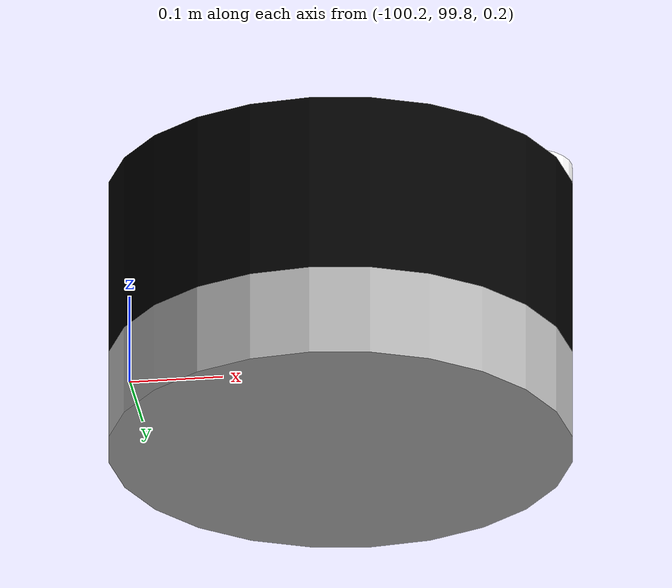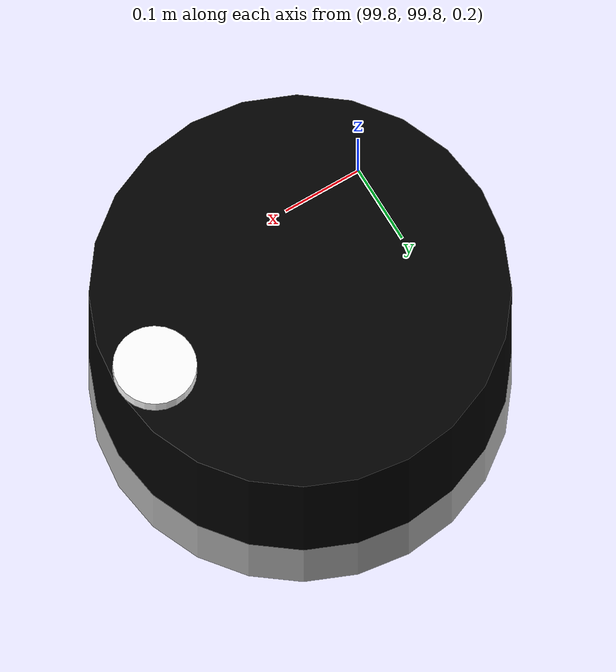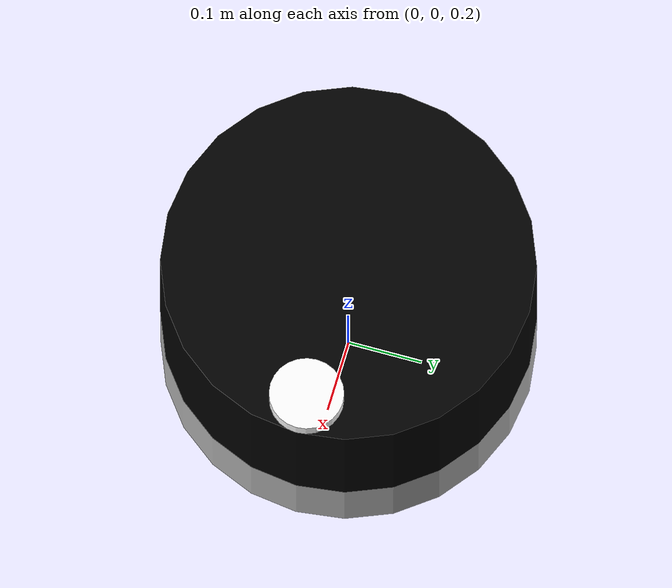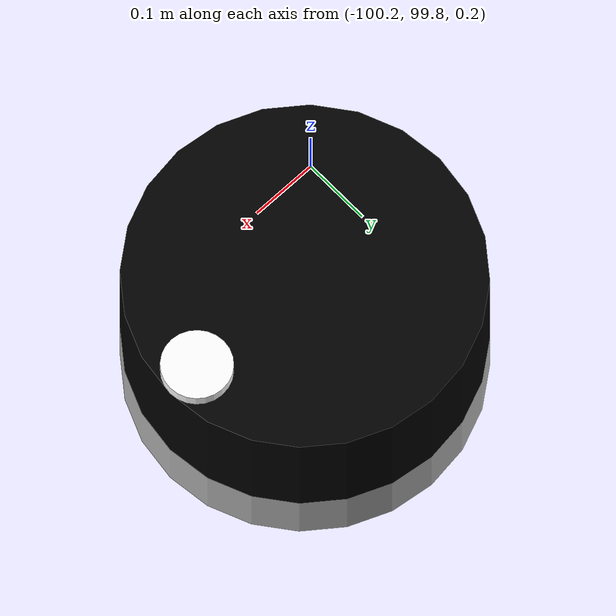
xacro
<?xml version="1.0"?>
<robot name="shooter" xmlns:xacro="http://www.ros.org/wiki/xacro">

    <xacro:arg name="is_simulation" default="true" />

    <link name="base_footprint">
    </link>

    <!-- raise the robot a bit higher to prevent it from stucking in the ground -->
    <joint name="joint_base_to_footprint" type="fixed">
        <origin rpy="0 0 0" xyz="0 0 0.2" />
        <parent link="base_footprint" />
        <child link="base_link" />
    </joint>

    <link name="base_link" />

    <xacro:include filename="$(find metav_description)/urdf/playground/motor.xacro" />
    <xacro:motor name="friction_wheel1" connected_to="base_link" x="-100" y="100" />
    <xacro:motor name="friction_wheel2" connected_to="base_link" x="100" y="100" />
    <xacro:motor name="bullet_loader" connected_to="base_link" x="0" y="0" />

    <ros2_control
        name="motor_control" type="system">
        <xacro:if value="$(arg is_simulation)">
            <hardware>
                <plugin>ign_ros2_control/IgnitionSystem</plugin>
            </hardware>
        </xacro:if>
        <xacro:unless value="$(arg is_simulation)">
            <hardware>
                <plugin>meta_hardware/MetaRobotDjiMotorNetwork</plugin>
                <param name="can_network_name">can0</param>
            </hardware>
        </xacro:unless>
        <joint name="friction_wheel1_joint">
            <command_interface name="effort" />
            <state_interface name="position" />
            <state_interface name="velocity" />
            <state_interface name="effort" />
            <param name="motor_model">M3508</param>
            <param name="motor_id">1</param>
            <param name="mechanical_reduction">1.0</param>
            <param name="offset">0.0</param>
        </joint>
        <joint name="friction_wheel2_joint">
            <command_interface name="effort" />
            <state_interface name="position" />
            <state_interface name="velocity" />
            <state_interface name="effort" />
            <param name="motor_model">M3508</param>
            <param name="motor_id">2</param>
            <param name="mechanical_reduction">1.0</param>
            <param name="offset">0.0</param>
        </joint>
        <joint name="bullet_loader_joint">
            <command_interface name="effort" />
            <state_interface name="position" />
            <state_interface name="velocity" />
            <state_interface name="effort" />
            <param name="motor_model">M2006</param>
            <param name="motor_id">3</param>
            <param name="mechanical_reduction">1.0</param>
            <param name="offset">0.0</param>
        </joint>
    </ros2_control>

    <xacro:if
        value="$(arg is_simulation)">
        <gazebo>
            <plugin filename="ign_ros2_control-system"
                name="ign_ros2_control::IgnitionROS2ControlPlugin">
                <parameters>$(find meta_bringup)/config/single_motor.yaml</parameters>
            </plugin>
        </gazebo>
    </xacro:if>
</robot>

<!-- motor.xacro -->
<robot name="motor" xmlns:xacro="http://www.ros.org/wiki/xacro">

    <xacro:macro name="cylinder_inertia" params="m r h">
        <inertia ixx="${m*(3*r*r+h*h)/12}" ixy="0" ixz="0"
            iyy="${m*(3*r*r+h*h)/12}" iyz="0"
            izz="${m*r*r/2}" />
    </xacro:macro>

    <xacro:macro name="motor" params="name connected_to x y">

        <joint name="${name}_connection" type="fixed">
            <origin xyz="${x} ${y} 0.0" rpy="0 0 0" />
            <parent link="${connected_to}" />
            <child link="${name}_base_link" />
        </joint>

        <link name="${name}_base_link">
            <inertial>
                <mass value="10.0" />
                <origin xyz="0 0 0.1" />
                <xacro:cylinder_inertia m="1.0" r="0.25" h="0.1" />
            </inertial>
            <visual>
                <origin xyz="0 0 0.05" rpy="0 0 0" />
                <geometry>
                    <cylinder radius="0.25" length="0.1" />
                </geometry>
                <material name="silver">
                    <color rgba="0.700 0.700 0.700 1.000" />
                </material>
            </visual>
            <collision>
                <origin xyz="0 0 0.05" rpy="0 0 0" />
                <geometry>
                    <cylinder radius="0.25" length="0.1" />
                </geometry>
            </collision>
        </link>

        <joint name="${name}_joint" type="continuous">
            <origin xyz="0 0 0.1" rpy="0 0 0" />
            <parent link="${name}_base_link" />
            <child link="${name}_top" />
            <dynamics damping="0.0" friction="0.1" />
            <limit effort="30" velocity="2.0" />
            <axis xyz="0 0 1" />
        </joint>

        <link name="${name}_top">
            <inertial>
                <mass value="20.0" />
                <origin xyz="0 0 0.1" />
                <xacro:cylinder_inertia m="20.0" r="0.25" h="0.2" />
            </inertial>
            <visual>
                <origin xyz="0 0 0.1" rpy="0 0 0" />
                <geometry>
                    <cylinder radius="0.25" length="0.2" />
                </geometry>
                <material name="black">
                    <color rgba="0.000 0.000 0.000 1.000" />
                </material>
            </visual>
            <collision>
                <origin xyz="0 0 0.1" rpy="0 0 0" />
                <geometry>
                    <cylinder radius="0.25" length="0.2" />
                </geometry>
            </collision>
        </link>

        <joint name="${name}_top_indicator_joint" type="fixed">
            <origin xyz="0.2 0 0.2" rpy="0 0 0" />
            <parent link="${name}_top" />
            <child link="${name}_top_indicator" />
        </joint>

        <link name="${name}_top_indicator">
            <inertial>
                <mass value="1.0" />
                <origin xyz="0 0 0.01" />
                <xacro:cylinder_inertia m="1.0" r="0.05" h="0.02" />
            </inertial>
            <visual>
                <origin xyz="0 0 0.01" rpy="0 0 0" />
                <geometry>
                    <cylinder radius="0.05" length="0.02" />
                </geometry>
                <material name="white">
                    <color rgba="1.000 1.000 1.000 1.000" />
                </material>
            </visual>
            <collision>
                <origin xyz="0 0 0.01" rpy="0 0 0" />
                <geometry>
                    <cylinder radius="0.05" length="0.02" />
                </geometry>
            </collision>
        </link>
    </xacro:macro>
</robot>
